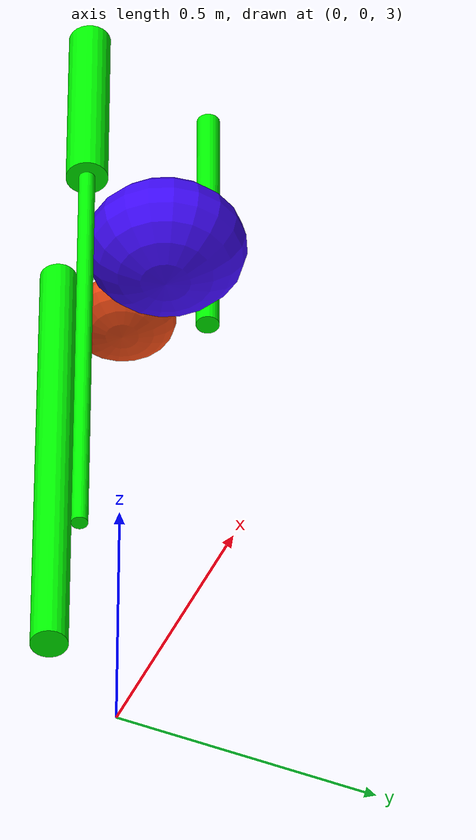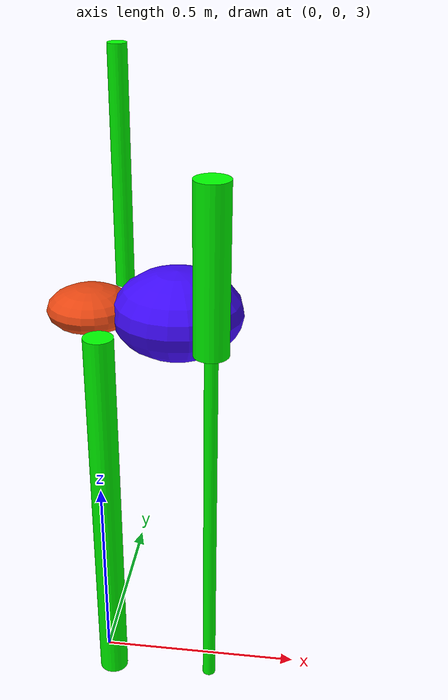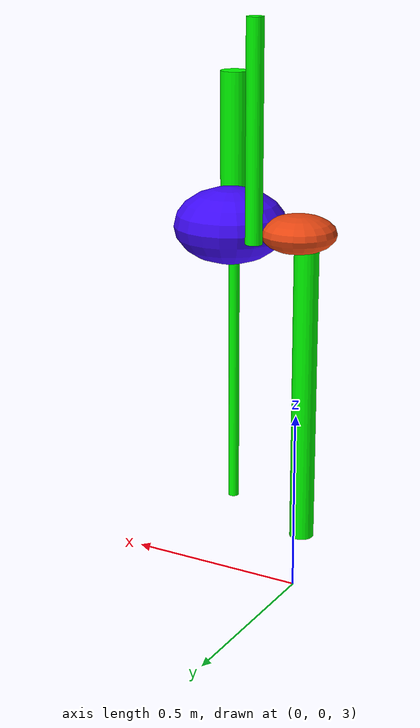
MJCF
<mujoco model="unnamed_model">
  <option timestep="0.01"/>
  <visual>
    <headlight ambient="0.5 0.5 0.5"/>
  </visual>
  <default>
    <default class="/"/>
  </default>
  <worldbody>
    <light name="//unnamed_light_0" class="/" pos="0 0 3" dir="0 0 -1" diffuse="0.5 0.5 0.5"/>
    <geom name="//unnamed_geom_0" class="/" type="plane" size="50 50 0.10000000000000001"/>
    <body name="//unnamed_body_0" pos="0 0 4">
      <joint name="//unnamed_joint_0" class="/" type="free"/>
      <geom name="//unnamed_geom_1" class="/" type="ellipsoid" size="0.10000000000000001 0.10000000000000001 0.050000000000000003" rgba="0.91000000000000003 0.27800000000000002 0.070999999999999994 1" pos="0 0 0"/>
      <geom name="//unnamed_geom_2" class="/" type="ellipsoid" size="0.14999999999999999 0.14999999999999999 0.10000000000000001" rgba="0.247 0.035000000000000003 0.97999999999999998 1" pos="0.20000000000000001 0 0"/>
      <body name="limb1" pos="0.050000000000000003 -0.14999999999999999 -0.46174916320920023">
        <geom name="//unnamed_geom_3" class="/" type="cylinder" size="0.034162123987062733 0.46174916320920023" rgba="0 1 0 1"/>
        <joint name="limb1_joint" class="/" type="hinge" pos="0 0 0.46174916320920023" axis="0 1 0" range="-45 45"/>
      </body>
      <body name="limb2" pos="0.29999999999999999 -0.20000000000000001 -0.43565708153267579">
        <geom name="//unnamed_geom_4" class="/" type="cylinder" size="0.0150755617979095 0.43565708153267579" rgba="0 1 0 1"/>
        <joint name="limb2_joint" class="/" type="hinge" pos="0 0 0.43565708153267579" axis="0 1 0" range="-45 45"/>
      </body>
      <body name="back_limb1" pos="0.050000000000000003 0.14999999999999999 0.27734193420641762">
        <geom name="//unnamed_geom_5" class="/" type="cylinder" size="0.022094970246426357 0.27734193420641762" rgba="0 1 0 1"/>
        <joint name="back_limb1_joint" class="/" type="hinge" pos="0 0 -0.27734193420641762" axis="0 1 0" range="-45 45"/>
      </body>
      <body name="back_limb2" pos="0.29999999999999999 -0.20000000000000001 0.18606310275174598">
        <geom name="//unnamed_geom_6" class="/" type="cylinder" size="0.038639986426019325 0.18606310275174598" rgba="0 1 0 1"/>
        <joint name="back_limb2_joint" class="/" type="hinge" pos="0 0 -0.18606310275174598" axis="0 1 0" range="-45 45"/>
      </body>
    </body>
  </worldbody>
  <actuator>
    <motor name="motor_limb1_joint" class="/" ctrllimited="true" ctrlrange="-45 45" gear="1" joint="limb1_joint"/>
    <motor name="motor_limb2_joint" class="/" ctrllimited="true" ctrlrange="-45 45" gear="1" joint="limb2_joint"/>
    <motor name="motor_back_back_limb1_joint" class="/" ctrllimited="true" ctrlrange="-45 45" gear="1" joint="back_limb1_joint"/>
    <motor name="motor_back_back_limb2_joint" class="/" ctrllimited="true" ctrlrange="-45 45" gear="1" joint="back_limb2_joint"/>
  </actuator>
</mujoco>
